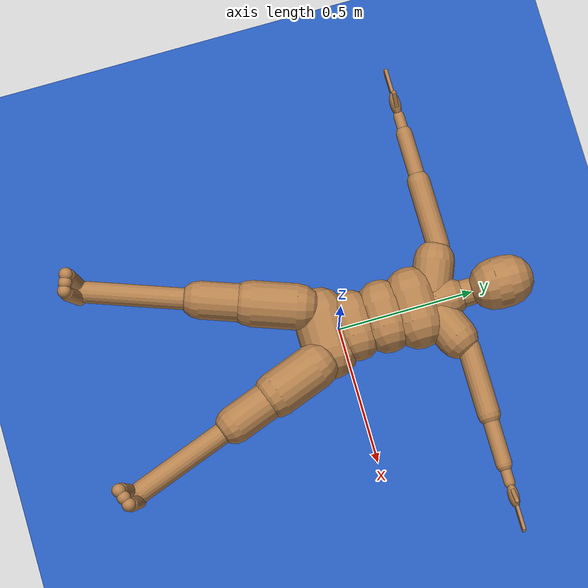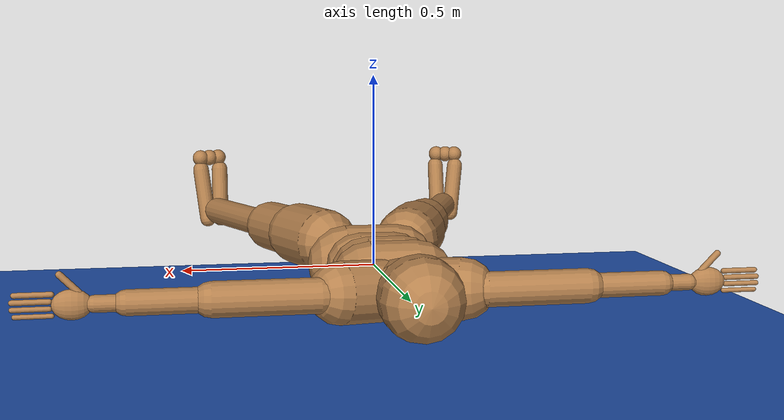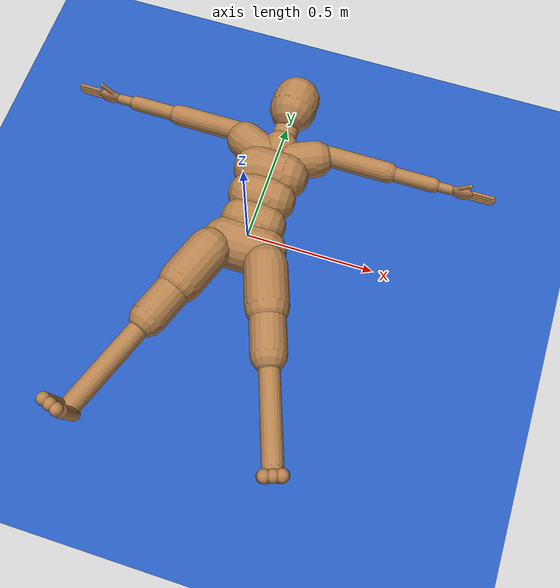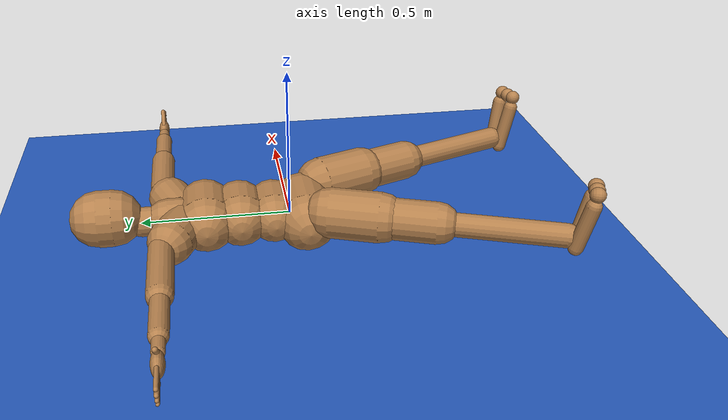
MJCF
<mujoco model="HumanoidCMU Tracking">
  <include file="../../common.xml"/>
  <include file="../humanoid_CMU_V2020.xml" />
  <size memory="1M"/>

  <custom>
    <numeric name="task_transition" data="1" />
    <numeric name="agent_planner" data="0" />
    <numeric name="agent_horizon" data="0.6" />
    <numeric name="agent_timestep" data="0.015" />
    <numeric name="sampling_spline_points" data="5" />
    <numeric name="sampling_exploration" data="0.15" />
    <numeric name="gradient_spline_points" data="5" />
  </custom>

  <default>
    <default class="mocap_site">
      <site type="sphere" size="0.027" rgba="0 0 1 1" group="2" material="target"/>
    </default>
  </default>

  <worldbody>
    <geom name="floor" pos="0 0 -0.2" size="0 0 0.05" type="plane" material="blue_grid"/>

    <body name="mocap[pelvis]" mocap="true">
      <site name="mocap[pelvis]" class="mocap_site" size="0.05" />
    </body>
    <body name="mocap[head]" mocap="true">
      <site name="mocap[head]" class="mocap_site" />
    </body>
    <body name="mocap[ltoe]" mocap="true">
      <site name="mocap[ltoe]" class="mocap_site" />
    </body>
    <body name="mocap[rtoe]" mocap="true">
      <site name="mocap[rtoe]" class="mocap_site" />
    </body>
    <body name="mocap[lheel]" mocap="true">
      <site name="mocap[lheel]" class="mocap_site" />
    </body>
    <body name="mocap[rheel]" mocap="true">
      <site name="mocap[rheel]" class="mocap_site" />
    </body>
    <body name="mocap[lknee]" mocap="true">
      <site name="mocap[lknee]" class="mocap_site" />
    </body>
    <body name="mocap[rknee]" mocap="true">
      <site name="mocap[rknee]" class="mocap_site" />
    </body>
    <body name="mocap[lhand]" mocap="true">
      <site name="mocap[lhand]" class="mocap_site" />
    </body>
    <body name="mocap[rhand]" mocap="true">
      <site name="mocap[rhand]" class="mocap_site" />
    </body>
    <body name="mocap[lelbow]" mocap="true">
      <site name="mocap[lelbow]" class="mocap_site" />
    </body>
    <body name="mocap[relbow]" mocap="true">
      <site name="mocap[relbow]" class="mocap_site" />
    </body>
    <body name="mocap[lshoulder]" mocap="true">
      <site name="mocap[lshoulder]" class="mocap_site" />
    </body>
    <body name="mocap[rshoulder]" mocap="true">
      <site name="mocap[rshoulder]" class="mocap_site" />
    </body>
    <body name="mocap[lhip]" mocap="true">
      <site name="mocap[lhip]" class="mocap_site" />
    </body>
    <body name="mocap[rhip]" mocap="true">
      <site name="mocap[rhip]" class="mocap_site" />
    </body>
  </worldbody>

  <sensor>
    <user name="control" dim="56" user="0 0.1 0 1.0" />
    <user name="joint vel." dim="62" user="0 0.01 0.0 1.0" />

    <user name="root pos error" dim="3" user="6 10.0 0.0 100.0 0.1" />
    <user name="head pos error" dim="3" user="6 10.0 0.0 100.0 0.1" />
    <user name="ltoe pos error" dim="3" user="6 1.0 0.0 100.0 0.1" />
    <user name="rtoe pos error" dim="3" user="6 1.0 0.0 100.0 0.1" />
    <user name="lheel pos error" dim="3" user="6 1.0 0.0 100.0 0.1" />
    <user name="rheel pos error" dim="3" user="6 1.0 0.0 100.0 0.1" />
    <user name="lknee pos error" dim="3" user="6 10.0 0.0 100.0 0.1" />
    <user name="rknee pos error" dim="3" user="6 10.0 0.0 100.0 0.1" />
    <user name="lhand pos error" dim="3" user="6 1.0 0.0 100.0 0.1" />
    <user name="rhand pos error" dim="3" user="6 1.0 0.0 100.0 0.1" />
    <user name="lelbow pos error" dim="3" user="6 1.0 0.0 100.0 0.1" />
    <user name="relbow pos error" dim="3" user="6 1.0 0.0 100.0 0.1" />
    <user name="lshoulder pos error" dim="3" user="6 10.0 0.0 100.0 0.1" />
    <user name="rshoulder pos error" dim="3" user="6 10.0 0.0 100.0 0.1" />
    <user name="lhip pos error" dim="3" user="6 1.0 0.0 100.0 0.1" />
    <user name="rhip pos error" dim="3" user="6 1.0 0.0 100.0 0.1" />

    <user name="root vel error" dim="3" user="6 0.01 0.0 100.0 0.1" />
    <user name="head vel error" dim="3" user="6 0.01 0.0 100.0 0.1" />
    <user name="ltoe vel error" dim="3" user="6 0.01 0.0 100.0 0.1" />
    <user name="rtoe vel error" dim="3" user="6 0.01 0.0 100.0 0.1" />
    <user name="lheel vel error" dim="3" user="6 0.01 0.0 100.0 0.1" />
    <user name="rheel vel error" dim="3" user="6 0.01 0.0 100.0 0.1" />
    <user name="lknee vel error" dim="3" user="6 0.01 0.0 100.0 0.1" />
    <user name="rknee vel error" dim="3" user="6 0.01 0.0 100.0 0.1" />
    <user name="lhand vel error" dim="3" user="6 0.01 0.0 100.0 0.1" />
    <user name="rhand vel error" dim="3" user="6 0.01 0.0 100.0 0.1" />
    <user name="lelbow vel error" dim="3" user="6 0.01 0.0 100.0 0.1" />
    <user name="relbow vel error" dim="3" user="6 0.01 0.0 100.0 0.1" />
    <user name="lshoulder vel error" dim="3" user="6 0.01 0.0 100.0 0.1" />
    <user name="rshoulder vel error" dim="3" user="6 0.01 0.0 100.0 0.1" />
    <user name="lhip vel error" dim="3" user="6 0.01 0.0 100.0 0.1" />
    <user name="rhip vel error" dim="3" user="6 0.01 0.0 100.0 0.1" />

    <framepos name="trace0" objtype="body" objname="thorax"/>

    <framepos name="tracking_pos[pelvis]" objtype="site" objname="root"/>
    <framepos name="tracking_pos[head]" objtype="site" objname="tracking[head]"/>
    <framepos name="tracking_pos[ltoe]" objtype="site" objname="tracking[ltoes0]"/>
    <framepos name="tracking_pos[rtoe]" objtype="site" objname="tracking[rtoes0]"/>
    <framepos name="tracking_pos[lheel]" objtype="site" objname="tracking[lfoot]"/>
    <framepos name="tracking_pos[rheel]" objtype="site" objname="tracking[rfoot]"/>
    <framepos name="tracking_pos[lknee]" objtype="site" objname="tracking[ltibia]"/>
    <framepos name="tracking_pos[rknee]" objtype="site" objname="tracking[rtibia]"/>
    <framepos name="tracking_pos[lhand]" objtype="site" objname="tracking[lwrist]"/>
    <framepos name="tracking_pos[rhand]" objtype="site" objname="tracking[rwrist]"/>
    <framepos name="tracking_pos[lelbow]" objtype="site" objname="tracking[lradius]"/>
    <framepos name="tracking_pos[relbow]" objtype="site" objname="tracking[rradius]"/>
    <framepos name="tracking_pos[lshoulder]" objtype="site" objname="tracking[lhumerus]"/>
    <framepos name="tracking_pos[rshoulder]" objtype="site" objname="tracking[rhumerus]"/>
    <framepos name="tracking_pos[lhip]" objtype="site" objname="tracking[lfemur]"/>
    <framepos name="tracking_pos[rhip]" objtype="site" objname="tracking[rfemur]"/>

    <framelinvel name="tracking_linvel[pelvis]" objtype="site" objname="root"/>
    <framelinvel name="tracking_linvel[head]" objtype="site" objname="tracking[head]"/>
    <framelinvel name="tracking_linvel[ltoe]" objtype="site" objname="tracking[ltoes0]"/>
    <framelinvel name="tracking_linvel[rtoe]" objtype="site" objname="tracking[rtoes0]"/>
    <framelinvel name="tracking_linvel[lheel]" objtype="site" objname="tracking[lfoot]"/>
    <framelinvel name="tracking_linvel[rheel]" objtype="site" objname="tracking[rfoot]"/>
    <framelinvel name="tracking_linvel[lknee]" objtype="site" objname="tracking[ltibia]"/>
    <framelinvel name="tracking_linvel[rknee]" objtype="site" objname="tracking[rtibia]"/>
    <framelinvel name="tracking_linvel[lhand]" objtype="site" objname="tracking[lwrist]"/>
    <framelinvel name="tracking_linvel[rhand]" objtype="site" objname="tracking[rwrist]"/>
    <framelinvel name="tracking_linvel[lelbow]" objtype="site" objname="tracking[lradius]"/>
    <framelinvel name="tracking_linvel[relbow]" objtype="site" objname="tracking[rradius]"/>
    <framelinvel name="tracking_linvel[lshoulder]" objtype="site" objname="tracking[lhumerus]"/>
    <framelinvel name="tracking_linvel[rshoulder]" objtype="site" objname="tracking[rhumerus]"/>
    <framelinvel name="tracking_linvel[lhip]" objtype="site" objname="tracking[lfemur]"/>
    <framelinvel name="tracking_linvel[rhip]" objtype="site" objname="tracking[rfemur]"/>
  </sensor>

  <include file="./keyframes/CMU-CMU-108-108_13_poses.xml"/>

</mujoco>

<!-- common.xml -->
<mujoco>

    <visual>
        <headlight ambient=".4 .4 .4" diffuse=".8 .8 .8" specular="0.1 0.1 0.1"/>
        <map znear=".01"/>
        <quality shadowsize="2048"/>
        <global elevation="-15"/>
    </visual>

    <asset>
        <texture name="blue_grid" type="2d" builtin="checker" rgb1=".02 .14 .44" rgb2=".27 .55 1" width="300" height="300" mark="edge" markrgb="1 1 1"/>
        <material name="blue_grid" texture="blue_grid" texrepeat="1 1" texuniform="true" reflectance=".2"/>

        <texture name="grey_grid" type="2d" builtin="checker" rgb1=".26 .26 .26" rgb2=".6 .6 .6" width="300" height="300" mark="edge" markrgb="1 1 1"/>
        <material name="grey_grid" texture="grey_grid" texrepeat="1 1" texuniform="true" reflectance=".2"/>
        <texture name="skybox" type="skybox" builtin="gradient" rgb1=".66 .79 1" rgb2=".9 .91 .93" width="800" height="800"/>

        <material name="self" rgba=".7 .5 .3 1"/>
        <material name="self_default" rgba=".7 .5 .3 1"/>
        <material name="self_highlight" rgba="0 .5 .3 1"/>
        <material name="effector" rgba=".7 .4 .2 1"/>
        <material name="effector_default" rgba=".7 .4 .2 1"/>
        <material name="effector_highlight" rgba="0 .5 .3 1"/>
        <material name="decoration" rgba=".2 .6 .3 1"/>
        <material name="eye" rgba="0 .2 1 1"/>
        <material name="target" rgba=".6 .3 .3 1"/>
        <material name="target_default" rgba=".6 .3 .3 1"/>
        <material name="target_highlight" rgba=".6 .3 .3 .4"/>
        <material name="site" rgba=".5 .5 .5 .3"/>
    </asset>

    <size memory="1M"/>

    <statistic extent="0.4" center="0.3 0.1 0"/>

    <visual>
        <quality shadowsize="8192"/>
        <global azimuth="180" elevation="-30"/>
    </visual>

    <default>
        <geom friction="1.0"/>
    </default>

    <compiler angle="radian" autolimits="true"/>

    <asset>
        <mesh name="apple" file="../../shared_assets/apple/apple.obj" />
        <mesh name="apple_contact0" file="../../shared_assets/apple/contact0.stl"  />
        <mesh name="apple_contact1" file="../../shared_assets/apple/contact1.stl"  />

        <mesh name="doorknob" file="../../shared_assets/doorknob/doorknob.obj" />

        <mesh name="flashlight" file="../../shared_assets/flashlight/flashlight.obj" />
        <mesh name="flashlight_contact0" file="../../shared_assets/flashlight/contact0.stl"  />
        <mesh name="flashlight_contact1" file="../../shared_assets/flashlight/contact1.stl"  />

        <mesh name="hammer" file="../../shared_assets/hammer/hammer.obj" />
        <mesh name="hammer_contact0" file="../../shared_assets/hammer/contact0.stl"  />
        <mesh name="hammer_contact1" file="../../shared_assets/hammer/contact1.stl"  />

        <mesh name="phone" file="../../shared_assets/phone/phone.obj" />
        <mesh name="phone_contact0" file="../../shared_assets/phone/contact0.stl"  />
        <mesh name="phone_contact1" file="../../shared_assets/phone/contact1.stl"  />
        <mesh name="phone_contact2" file="../../shared_assets/phone/contact2.stl"  />

        <mesh name="stapler" file="../../shared_assets/stapler/stapler.obj" />
        <mesh name="stapler_contact0" file="../../shared_assets/stapler/contact0.stl"  />
        <mesh name="stapler_contact1" file="../../shared_assets/stapler/contact1.stl"  />
        <mesh name="stapler_contact2" file="../../shared_assets/stapler/contact2.stl"  />
        <mesh name="stapler_contact3" file="../../shared_assets/stapler/contact3.stl"  />
        <mesh name="stapler_contact4" file="../../shared_assets/stapler/contact4.stl"  />

        <mesh name="waterbottle" file="../../shared_assets/waterbottle/waterbottle.obj" />
        <mesh name="waterbottle_contact0" file="../../shared_assets/waterbottle/contact0.stl"  />
        <mesh name="waterbottle_contact1" file="../../shared_assets/waterbottle/contact1.stl"  />
    </asset>

</mujoco>

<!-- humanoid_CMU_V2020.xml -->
<mujoco model="HumanoidCMU">
  <compiler angle="radian"/>
  <size njmax="500" nconmax="500"/>
  <default>
    <joint limited="true" solimplimit="0 0.99 0.01" stiffness="1" armature=".01" damping="1"/>
    <geom size="0.03 0 0" condim="1" friction="0.7 0.005 0.0001" solref="0.015 1" solimp="0.99 0.99 0.003"/>
    <general ctrllimited="true" ctrlrange="-1 1"/>
    <default class="humanoid">
      <geom type="capsule" material="self" group="2"/>
      <default class="stiff_medium">
        <joint stiffness="10" damping="2"/>
      </default>
      <default class="stiff_medium_higher">
        <joint stiffness="50" damping="4"/>
      </default>
      <default class="stiff_high">
        <joint stiffness="200" damping="5"/>
      </default>
      <default class="sensor_site">
        <site type="sphere" size="0.01" group="4" rgba="1 0 0 .5"/>
      </default>
      <default class="contact">
        <geom condim="3" friction="1. 0.005 0.0001" solref="0.015 1" solimp="0.98 0.98 0.001" priority="1"/>
      </default>
      <default class="tracking_site">
        <site type="sphere" size="0.027" rgba="1 0 0 1" group="3"/>
      </default>
    </default>
  </default>
  <worldbody>
    <body name="root" childclass="humanoid">
      <light name="tracking_light" pos="0 0 7" dir="0 0 -1" mode="trackcom"/>
      <camera name="back" pos="0 3 1.4" xyaxes="-1 0 0 0 -1 2" mode="trackcom"/>
      <camera name="side" pos="-3 0 1.4" xyaxes="0 -1 0 1 0 2" mode="trackcom"/>
      <camera name="front_side" pos="-2 -2 0.5" xyaxes="0.5 -0.5 0 0.1 0.1 1" mode="trackcom"/>
      <camera name="bodycam" pos="0 .3 .1" xyaxes="-1 0 0 0 1 0" fovy="80"/>
      <site name="root" size="0.05" class="tracking_site"/>
      <freejoint/>
      <geom name="root_geom" size="0.1 0.07" pos="0 -0.05 0" quat="1 0 -1 0"/>
      <body name="lhipjoint">
        <geom name="lhipjoint" size="0.008 0.02187363" pos="0.0509685 -0.0459037 0.024723" quat="0.5708 -0.566602 -0.594264 0"/>
        <body name="lfemur" pos="0.101937 -0.0918074 0.0494461" quat="0.984808 0 0 0.173648">
          <site class="tracking_site" name="tracking[lfemur]"/>
          <joint name="lfemurrz" pos="0 0 0" axis="0 0 1" range="-1.0472 1.22173" class="stiff_medium"/>
          <joint name="lfemurry" pos="0 0 0" axis="0 1 0" range="-1.22173 1.22173" class="stiff_medium"/>
          <joint name="lfemurrx" pos="0 0 0" axis="1 0 0" range="-2.79253 0.349066" class="stiff_medium"/>
          <geom name="lfemur_upper" size="0.085 0.083" pos="0 -0.115473 0" quat="0.696364 -0.696364 -0.122788 -0.122788" mass="0"/>
          <geom name="lfemur" size="0.07 0.182226" pos="0 -0.202473 0" quat="0.696364 -0.696364 -0.122788 -0.122788"/>
          <body name="ltibia" pos="0 -0.404945 0">
            <site class="tracking_site" name="tracking[ltibia]"/>
            <joint name="ltibiarx" pos="0 0 0" axis="1 0 0" range="0.01 2.96706"/>
            <geom name="ltibia" size="0.04 0.1825614" pos="0 -0.202846 0" quat="0.696364 -0.696364 -0.122788 -0.122788"/>
            <body name="lfoot" pos="0 -0.415693 0" quat="1 -1 0 0">
              <site class="tracking_site" name="tracking[lfoot]"/>
              <site name="lfoot_touch" type="capsule" pos="0.0 0.02 -0.015" size="0.025 0.01" zaxis="1 0 0" class="sensor_site"/>
              <joint name="lfootrz" pos="0 0 0" axis="0 0 1" range="-1.22173 0.349066" class="stiff_medium"/>
              <joint name="lfootrx" pos="0 0 0" axis="1 0 0" range="-0.785398 0.8" class="stiff_medium"/>
              <geom name="lfoot" size="0.025 0.08" pos="-0.0269999975006 -0.05 -0.0113878" quat=" 0.76725516 -0.64051114  0.02306487 -0.02306583" class="contact"/>
              <geom name="lfoot_ch" size="0.025 0.08" pos="0.0270000024994 -0.05 -0.0113878" quat=" 0.72887266 -0.59399462 -0.24074283 -0.2407425 " class="contact"/>
              <body name="ltoes" pos="0 -0.156372 -0.0227756">
                <site class="tracking_site" name="tracking[ltoes0]"/>
                <joint name="ltoesrx" pos="0 0 0" axis="1 0 0" range="-1.5708 0.349066"/>
                <geom name="ltoes0" type="sphere" size="0.025" pos="0 -0.01 -.01" class="contact"/>
                <geom name="ltoes1" type="sphere" size="0.025" pos=".03 -0.01 -.01" class="contact"/>
                <geom name="ltoes2" type="sphere" size="0.025" pos="-.03 -0.01 -.01" class="contact"/>
                <site name="ltoes_touch" type="capsule" pos="0.0 -0.01 -0.02" size="0.025 0.03" zaxis="1 0 0" class="sensor_site"/>
              </body>
            </body>
          </body>
        </body>
      </body>
      <body name="rhipjoint">
        <geom name="rhipjoint" size="0.008 0.02187363" pos="-0.0509685 -0.0459037 0.024723" quat="0.574856 -0.547594 0.608014 0"/>
        <body name="rfemur" pos="-0.101937 -0.0918074 0.0494461" quat="0.984808 0 0 -0.173648">
          <site class="tracking_site" name="tracking[rfemur]"/>
          <joint name="rfemurrz" pos="0 0 0" axis="0 0 1" range="-1.22173 1.0472" class="stiff_medium"/>
          <joint name="rfemurry" pos="0 0 0" axis="0 1 0" range="-1.22173 1.22173" class="stiff_medium"/>
          <joint name="rfemurrx" pos="0 0 0" axis="1 0 0" range="-2.79253 0.349066" class="stiff_medium"/>
          <geom name="rfemur_upper" size="0.085 0.083" pos="0 -0.115473 0" quat="0.696364 -0.696364 0.122788 0.122788" mass="0"/>
          <geom name="rfemur" size="0.07 0.182226" pos="0 -0.202473 0" quat="0.696364 -0.696364 0.122788 0.122788"/>
          <body name="rtibia" pos="0 -0.404945 0">
            <site class="tracking_site" name="tracking[rtibia]"/>
            <joint name="rtibiarx" pos="0 0 0" axis="1 0 0" range="0.01 2.96706"/>
            <geom name="rtibia" size="0.04 0.1825614" pos="0 -0.202846 0" quat="0.696364 -0.696364 0.122788 0.122788"/>
            <body name="rfoot" pos="0 -0.415693 0" quat="0.707107 -0.707107 0 0">
              <site class="tracking_site" name="tracking[rfoot]"/>
              <site name="rfoot_touch" type="capsule" pos="0.0 0.02 -0.015" size="0.025 0.01" zaxis="1 0 0" class="sensor_site"/>
              <joint name="rfootrz" pos="0 0 0" axis="0 0 1" range="-0.349066 1.22173" class="stiff_medium"/>
              <joint name="rfootrx" pos="0 0 0" axis="1 0 0" range="-0.785398 .8" class="stiff_medium"/>
              <geom name="rfoot" size="0.025 0.08" pos="-0.0269999965316 -0.05 -0.0113878" quat=" 0.73520687 -0.58633523  0.24050108  0.24050079" class="contact"/>
              <geom name="rfoot_ch" size="0.025 0.08" pos="0.0270000034684 -0.05 -0.0113878" quat=" 0.77312469 -0.633231   -0.02545846  0.02545836" class="contact"/>
              <body name="rtoes" pos="0 -0.156372 -0.0227756">
                <site class="tracking_site" name="tracking[rtoes0]"/>
                <joint name="rtoesrx" pos="0 0 0" axis="1 0 0" range="-1.5708 0.349066"/>
                <geom name="rtoes0" type="sphere" size="0.025" pos="0 -0.01 -.01" class="contact"/>
                <geom name="rtoes1" type="sphere" size="0.025" pos=".03 -0.01 -.01" class="contact"/>
                <geom name="rtoes2" type="sphere" size="0.025" pos="-.03 -0.01 -.01" class="contact"/>
                <site name="rtoes_touch" type="capsule" pos="0.0 -0.01 -0.02" size="0.025 0.03" zaxis="1 0 0" class="sensor_site"/>
              </body>
            </body>
          </body>
        </body>
      </body>
      <body name="lowerback">
        <joint name="lowerbackrz" pos="0 0 0" axis="0 0 1" range="-0.523599 0.523599" class="stiff_high"/>
        <joint name="lowerbackry" pos="0 0 0" axis="0 1 0" range="-0.523599 0.523599" class="stiff_high"/>
        <joint name="lowerbackrx" pos="0 0 0" axis="1 0 0" range="-0.349066 0.785398" class="stiff_medium"/>
        <geom name="lowerback" size="0.085 0.04540016" pos="0.00282931 0.0566065 0.01" quat="1 0 1 0"/>
        <body name="upperback" pos="0.000565862 0.113213 -0.00805298">
          <joint name="upperbackrz" pos="0 0 0" axis="0 0 1" range="-0.523599 0.523599" class="stiff_high"/>
          <joint name="upperbackry" pos="0 0 0" axis="0 1 0" range="-0.523599 0.523599" class="stiff_high"/>
          <joint name="upperbackrx" pos="0 0 0" axis="1 0 0" range="-0.349066 0.785398" class="stiff_medium"/>
          <geom name="upperback" size="0.09 0.04542616" pos="0.000256264 0.0567802 0.02" quat="1 0 1 0"/>
          <body name="thorax" pos="0.000512528 0.11356 0.000936821">
            <joint name="thoraxrz" pos="0 0 0" axis="0 0 1" range="-0.523599 0.523599" class="stiff_high"/>
            <joint name="thoraxry" pos="0 0 0" axis="0 1 0" range="-0.523599 0.523599" class="stiff_high"/>
            <joint name="thoraxrx" pos="0 0 0" axis="1 0 0" range="-0.349066 0.785398" class="stiff_medium"/>
            <geom name="thorax" size="0.095 0.0570206" pos="0 0.0569725 0.02" quat="1 0 1 0"/>
            <body name="lowerneck" pos="0 0.113945 0.00468037">
              <joint name="lowerneckrz" pos="0 0 0" axis="0 0 1" range="-0.523599 0.523599" class="stiff_medium_higher"/>
              <joint name="lowerneckry" pos="0 0 0" axis="0 1 0" range="-0.523599 0.523599" class="stiff_medium_higher"/>
              <joint name="lowerneckrx" pos="0 0 0" axis="1 0 0" range="-0.349066 0.785398" class="stiff_medium_higher"/>
              <geom name="lowerneck" size="0.075 0.02279225" pos="-0.00165071 0.0452401 0.00534359" quat="1 1 0 0"/>
              <body name="upperneck" pos="-0.00330143 0.0904801 0.0106872">
                <joint name="upperneckrz" pos="0 0 0" axis="0 0 1" range="-0.523599 0.523599" class="stiff_medium_higher"/>
                <joint name="upperneckry" pos="0 0 0" axis="0 1 0" range="-0.523599 0.523599" class="stiff_medium_higher"/>
                <joint name="upperneckrx" pos="0 0 0" axis="1 0 0" range="-0.349066 0.785398" class="stiff_medium_higher"/>
                <geom name="upperneck" size="0.05 0.0225272" pos="0.000500875 0.0449956 -0.00224644" quat="1 1 0 0"/>
                <body name="head" pos="0.00100175 0.13 -0.00449288">
                  <site class="tracking_site" name="tracking[head]"/>
                  <camera name="egocentric" pos="0 0 0" xyaxes="-1 0 0 0 1 0" fovy="80"/>
                  <joint name="headrz" pos="0 0 0" axis="0 0 1" range="-0.523599 0.523599" class="stiff_medium_higher"/>
                  <joint name="headry" pos="0 0 0" axis="0 1 0" range="-0.523599 0.523599" class="stiff_medium_higher"/>
                  <joint name="headrx" pos="0 0 0" axis="1 0 0" range="-0.349066 0.785398" class="stiff_medium_higher"/>
                  <geom name="head" size="0.095 0.024104" pos="0.000341465 0.048184 0.025" quat="1 1 0 0"/>
                </body>
              </body>
            </body>
            <body name="lclavicle" pos="0 0.113945 0.00468037">
              <joint name="lclaviclerz" pos="0 0 0" axis="0 0 1" range="0 0.349066" class="stiff_high"/>
              <joint name="lclaviclery" pos="0 0 0" axis="0 1 0" range="-0.349066 0.174533" class="stiff_high"/>
              <geom name="lclavicle" size="0.075 0.06" pos="0.0918817 0.0382636 0.00535704" quat="0.688 0.279 -0.67 0"/>
              <body name="lhumerus" pos="0.18 0.09 0.0107141" quat="0.183013 0.683013 -0.683013 0.183013">
                <site class="tracking_site" name="tracking[lhumerus]"/>
                <joint name="lhumerusrz" pos="0 0 0" axis="0 0 1" range="-1.1 1.5708" class="stiff_medium"/>
                <joint name="lhumerusry" pos="0 0 0" axis="0 1 0" range="-1.5708 1.5708" class="stiff_medium"/>
                <joint name="lhumerusrx" pos="0 0 0" axis="1 0 0" range="-1.0472 1.5708" class="stiff_medium"/>
                <site name="lhumerus_ft" class="sensor_site"/>
                <geom name="lhumerus" size="0.042 0.1245789" pos="0 -0.138421 0" quat="0.612372 -0.612372 0.353553 0.353553"/>
                <body name="lradius" pos="0 -0.276843 0">
                  <site class="tracking_site" name="tracking[lradius]"/>
                  <joint name="lradiusrx" pos="0 0 0" axis="1 0 0" range="-0.174533 2.96706"/>
                  <geom name="lradius" size="0.03 0.08169111" pos="0 -0.0907679 0" quat="0.612372 -0.612372 0.353553 0.353553"/>
                  <site name="lwrist" pos="0 -0.181536 0" quat="-0.5 0 0.866025 0"/>
                  <body name="lwrist" pos="0 -0.181536 0" quat="-0.5 0 0.866025 0">
                    <site class="tracking_site" name="tracking[lwrist]"/>
                    <joint name="lwristry" pos="0 0 0" axis="0 1 0" range="0 3.14159"/>
                    <geom name="lwrist" size="0.02 0.03" pos="0 -0.03 0" quat="1.59389e-11 -1.59388e-11 -0.707107 -0.707107"/>
                    <body name="lhand" pos="0 -0.0907676 0">
                      <joint name="lhandrz" pos="0 0 0" axis="0 0 1" range="-0.785398 0.785398"/>
                      <joint name="lhandrx" pos="0 0 0" axis="1 0 0" range="-1.5708 1.5708"/>
                      <site name="lhand_touch" size=".012 0.005 0.015" pos="0 -0.016752 -0.02" quat="0 0 -1 -1" type="ellipsoid" class="sensor_site"/>
                      <geom name="lhand" size="0.035 0.02 0.045" pos="0 -0.016752 0" quat="0 0 -1 -1" type="ellipsoid" class="contact"/>
                      <body name="lfingers" pos="0 -0.075 0">
                        <joint name="lfingersrx" pos="0 0.015 0" axis="1 0 0" range="0 1.5708"/>
                        <site name="lfingers_touch" type="box" size="0.023 0.013 0.003" pos="0 -0.042 -0.007" class="sensor_site"/>
                        <geom name="lfinger0" size="0.0065 0.04" pos="-.024 -0.025 0" quat="1 -1 0 0" class="contact"/>
                        <geom name="lfinger1" size="0.0065 0.04" pos="-.008 -0.03 0" quat="1 -1 0 0" class="contact"/>
                        <geom name="lfinger2" size="0.006 0.04" pos=".008 -0.03 0" quat="1 -1 0 0" class="contact"/>
                        <geom name="lfinger3" size="0.0055 0.04" pos=".024 -0.025 0" quat="1 -1 0 0" class="contact"/>
                      </body>
                      <body name="lthumb" pos="-.025 0 0" quat="0.92388 0 0 -0.382683">
                        <joint name="lthumbrz" pos="0 0 0" axis="0 0 1" range="-0.785398 0.785398"/>
                        <joint name="lthumbrx" pos="0 0 0" axis="1 0 0" range="0 1.57"/>
                        <site name="lthumb_touch" type="box" size="0.006 0.013 0.003" pos="0 -0.043 -0.007" class="sensor_site"/>
                        <geom name="lthumb" size="0.008 0.03" pos="0 -0.03 0" quat="0 0 -1 -1" class="contact"/>
                      </body>
                    </body>
                  </body>
                </body>
              </body>
            </body>
            <body name="rclavicle" pos="0 0.113945 0.00468037">
              <joint name="rclaviclerz" pos="0 0 0" axis="0 0 1" range="-0.349066 0" class="stiff_high"/>
              <joint name="rclaviclery" pos="0 0 0" axis="0 1 0" range="-0.174533 0.349066" class="stiff_high"/>
              <geom name="rclavicle" size="0.075 0.06" pos="-0.0918817 0.0382636 0.00535704" quat="0.688 0.279 0.67 0"/>
              <body name="rhumerus" pos="-0.18 0.09 0.0107141" quat="0.183013 0.683013 0.683013 -0.183013">
                <site class="tracking_site" name="tracking[rhumerus]"/>
                <joint name="rhumerusrz" pos="0 0 0" axis="0 0 1" range="-1.1 1.5708" class="stiff_medium"/>
                <joint name="rhumerusry" pos="0 0 0" axis="0 1 0" range="-1.5708 1.5708" class="stiff_medium"/>
                <joint name="rhumerusrx" pos="0 0 0" axis="1 0 0" range="-1.0472 1.5708" class="stiff_medium"/>
                <site name="rhumerus_ft" class="sensor_site"/>
                <geom name="rhumerus" size="0.042 0.1245789" pos="0 -0.138421 0" quat="0.612372 -0.612372 -0.353553 -0.353553"/>
                <body name="rradius" pos="0 -0.276843 0">
                  <site class="tracking_site" name="tracking[rradius]"/>
                  <joint name="rradiusrx" pos="0 0 0" axis="1 0 0" range="-0.174533 2.96706"/>
                  <geom name="rradius" size="0.03 0.08169111" pos="0 -0.0907679 0" quat="0.61238 -0.612372 -0.353554 -0.353541"/>
                  <body name="rwrist" pos="0 -0.181536 0" quat="-0.5 0 -0.866025 0">
                    <site class="tracking_site" name="tracking[rwrist]"/>
                    <joint name="rwristry" pos="0 0 0" axis="0 1 0" range="-3.14159 0"/>
                    <geom name="rwrist" size="0.02 0.03" pos="0 -0.03 0" quat="0 0 1 1"/>
                    <body name="rhand" pos="0 -0.0907676 0">
                      <joint name="rhandrz" pos="0 0 0" axis="0 0 1" range="-0.785398 0.785398"/>
                      <joint name="rhandrx" pos="0 0 0" axis="1 0 0" range="-1.5708 1.5708"/>
                      <site name="rhand_touch" size=".012 0.005 0.015" pos="0 -0.016752 -0.02" quat="0 0 1 1" type="ellipsoid" class="sensor_site"/>
                      <geom name="rhand" size="0.035 0.02 0.045" pos="0 -0.016752 0" quat="0 0 1 1" type="ellipsoid" class="contact"/>
                      <body name="rfingers" pos="0 -0.075 0">
                        <joint name="rfingersrx" pos="0 0.015 0" axis="1 0 0" range="0 1.5708"/>
                        <site name="rfingers_touch" type="box" size="0.023 0.013 0.003" pos="0 -0.042 -0.007" class="sensor_site"/>
                        <geom name="rfinger0" size="0.0065 0.04" pos=".024 -0.025 0" quat="1 -1 0 0" class="contact"/>
                        <geom name="rfinger1" size="0.0065 0.04" pos=".008 -0.03 0" quat="1 -1 0 0" class="contact"/>
                        <geom name="rfinger2" size="0.006 0.04" pos="-.008 -0.03 0" quat="1 -1 0 0" class="contact"/>
                        <geom name="rfinger3" size="0.0055 0.04" pos="-.024 -0.025 0" quat="1 -1 0 0" class="contact"/>
                      </body>
                      <body name="rthumb" pos=".025 0 0" quat="0.92388 0 0 0.382683">
                        <joint name="rthumbrz" pos="0 0 0" axis="0 0 1" range="-0.785398 0.785398"/>
                        <joint name="rthumbrx" pos="0 0 0" axis="1 0 0" range="0 1.57"/>
                        <site name="rthumb_touch" type="box" size="0.006 0.013 0.003" pos="0 -0.043 -0.007" class="sensor_site"/>
                        <geom name="rthumb" size="0.008 0.03" pos="0 -0.03 0" quat="6.21773e-11 -6.35284e-11 0.707107 0.707107" class="contact"/>
                      </body>
                    </body>
                  </body>
                </body>
              </body>
            </body>
          </body>
        </body>
      </body>
    </body>
  </worldbody>
  <contact>
    <exclude body1="lclavicle" body2="rclavicle"/>
    <exclude body1="lowerneck" body2="lclavicle"/>
    <exclude body1="lowerneck" body2="rclavicle"/>
    <exclude body1="upperneck" body2="lclavicle"/>
    <exclude body1="upperneck" body2="rclavicle"/>
  </contact>
  <actuator>
    <motor name="headrx" joint="headrx" gear="20"/>
    <motor name="headry" joint="headry" gear="20"/>
    <motor name="headrz" joint="headrz" gear="20"/>
    <motor name="lclaviclery" joint="lclaviclery" gear="20"/>
    <motor name="lclaviclerz" joint="lclaviclerz" gear="20"/>
    <motor name="lfemurrx" joint="lfemurrx" gear="120"/>
    <motor name="lfemurry" joint="lfemurry" gear="40"/>
    <motor name="lfemurrz" joint="lfemurrz" gear="40"/>
    <motor name="lfingersrx" joint="lfingersrx" gear="20"/>
    <motor name="lfootrx" joint="lfootrx" gear="20"/>
    <motor name="lfootrz" joint="lfootrz" gear="20"/>
    <motor name="lhandrx" joint="lhandrx" gear="20"/>
    <motor name="lhandrz" joint="lhandrz" gear="20"/>
    <motor name="lhumerusrx" joint="lhumerusrx" gear="40"/>
    <motor name="lhumerusry" joint="lhumerusry" gear="40"/>
    <motor name="lhumerusrz" joint="lhumerusrz" gear="40"/>
    <motor name="lowerbackrx" joint="lowerbackrx" gear="40"/>
    <motor name="lowerbackry" joint="lowerbackry" gear="40"/>
    <motor name="lowerbackrz" joint="lowerbackrz" gear="40"/>
    <motor name="lowerneckrx" joint="lowerneckrx" gear="20"/>
    <motor name="lowerneckry" joint="lowerneckry" gear="20"/>
    <motor name="lowerneckrz" joint="lowerneckrz" gear="20"/>
    <motor name="lradiusrx" joint="lradiusrx" gear="40"/>
    <motor name="lthumbrx" joint="lthumbrx" gear="20"/>
    <motor name="lthumbrz" joint="lthumbrz" gear="20"/>
    <motor name="ltibiarx" joint="ltibiarx" gear="80"/>
    <motor name="ltoesrx" joint="ltoesrx" gear="20"/>
    <motor name="lwristry" joint="lwristry" gear="20"/>
    <motor name="rclaviclery" joint="rclaviclery" gear="20"/>
    <motor name="rclaviclerz" joint="rclaviclerz" gear="20"/>
    <motor name="rfemurrx" joint="rfemurrx" gear="120"/>
    <motor name="rfemurry" joint="rfemurry" gear="40"/>
    <motor name="rfemurrz" joint="rfemurrz" gear="40"/>
    <motor name="rfingersrx" joint="rfingersrx" gear="20"/>
    <motor name="rfootrx" joint="rfootrx" gear="20"/>
    <motor name="rfootrz" joint="rfootrz" gear="20"/>
    <motor name="rhandrx" joint="rhandrx" gear="20"/>
    <motor name="rhandrz" joint="rhandrz" gear="20"/>
    <motor name="rhumerusrx" joint="rhumerusrx" gear="40"/>
    <motor name="rhumerusry" joint="rhumerusry" gear="40"/>
    <motor name="rhumerusrz" joint="rhumerusrz" gear="40"/>
    <motor name="rradiusrx" joint="rradiusrx" gear="40"/>
    <motor name="rthumbrx" joint="rthumbrx" gear="20"/>
    <motor name="rthumbrz" joint="rthumbrz" gear="20"/>
    <motor name="rtibiarx" joint="rtibiarx" gear="80"/>
    <motor name="rtoesrx" joint="rtoesrx" gear="20"/>
    <motor name="rwristry" joint="rwristry" gear="20"/>
    <motor name="thoraxrx" joint="thoraxrx" gear="40"/>
    <motor name="thoraxry" joint="thoraxry" gear="40"/>
    <motor name="thoraxrz" joint="thoraxrz" gear="40"/>
    <motor name="upperbackrx" joint="upperbackrx" gear="40"/>
    <motor name="upperbackry" joint="upperbackry" gear="40"/>
    <motor name="upperbackrz" joint="upperbackrz" gear="40"/>
    <motor name="upperneckrx" joint="upperneckrx" gear="20"/>
    <motor name="upperneckry" joint="upperneckry" gear="20"/>
    <motor name="upperneckrz" joint="upperneckrz" gear="20"/>
  </actuator>
</mujoco>

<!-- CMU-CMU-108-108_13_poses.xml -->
<mujoco>
  <keyframe>
    <key name="home" mpos="0.0 0.0 0.93457 -0.06914 -0.04399 1.4942 -0.30629 -0.06913 0.04377 0.51269 0.11572 0.18015 -0.18185 -0.06428 0.09405 0.47974 0.05799 0.29744 -0.1398 -0.08339 0.49196 0.12597 0.11766 0.4765 0.02383 -0.17134 1.05396 -0.15993 0.07802 1.11012 0.22981 -0.24852 1.17149 0.05924 0.20754 1.1315 0.05021 -0.19791 1.35451 0.00305 0.14988 1.37345 -0.00691 -0.071 0.84432 0.02651 0.06208 0.84382" qpos="0.0 0.0 0.77086 -0.45615 -0.49393 0.55856 0.48576 -0.42751 0.05081 -0.37943 0.226 0.08505 -0.11758 0.0 0.17395 -0.18889 0.31505 0.76389 -0.31807 0.13212 0.0 -0.08042 0.03618 -0.2546 -0.02543 0.04857 -0.08017 0.01708 0.04679 0.01259 -0.00812 0.00542 0.27163 0.00365 -0.002 0.08777 0.00357 0.00062 -0.18143 0.1894 -0.23499 1.5708 0.04005 -1.0472 1.46274 0.0 0.0 0.0 0.7854 0.0 0.785 -0.05543 0.29134 -1.1 0.15163 -0.77737 1.59473 0.0 0.0 0.0 0.7854 0.0 0.785" qvel="-2.64317 -0.1502 -0.67959 -0.42672 0.68351 -0.0265 -0.76702 -0.02135 1.77788 1.64152 0.21887 -0.83993 0.0 -0.27773 -0.07721 -0.73166 4.57759 -0.76225 -1.21992 0.0 -1.36065 -0.64758 -1.77215 -0.09606 -0.14755 0.55709 1.38271 -0.29326 2.77848 0.86445 -0.80366 -0.26029 0.64322 -0.49088 -0.38203 0.07997 -0.44995 -0.6208 -0.877 -0.70506 0.0 0.43139 0.0 2.28798 0.0 0.0 0.0 0.0 0.0 0.0 1.66291 0.62229 0.0 -3.2837 -3.00332 2.38561 0.0 0.0 0.0 0.0 0.0 0.0" />
    <key mpos="-0.08811 -0.00501 0.91192 -0.15506 -0.04463 1.47221 -0.33419 -0.06464 0.01381 0.42482 0.11743 0.2043 -0.2108 -0.05427 0.0658 0.38298 0.0578 0.31774 -0.2173 -0.08025 0.46549 0.00997 0.12368 0.44927 -0.08322 -0.17002 1.02568 -0.22764 0.0938 1.06329 0.12387 -0.25613 1.13476 0.00064 0.19821 1.11078 -0.04369 -0.20329 1.32828 -0.07177 0.14598 1.34963 -0.09479 -0.07618 0.82178 -0.06436 0.05761 0.82077" />
    <key mpos="-0.17327 -0.00959 0.88376 -0.24203 -0.04519 1.44645 -0.34026 -0.06335 0.00607 0.31715 0.11992 0.21665 -0.21268 -0.04863 0.04537 0.27114 0.05936 0.32798 -0.29802 -0.07111 0.43611 -0.11375 0.12798 0.41696 -0.1943 -0.1673 0.9882 -0.28601 0.11485 1.00688 0.01248 -0.26432 1.08834 -0.05369 0.18642 1.08546 -0.13827 -0.2085 1.29444 -0.14661 0.14106 1.31855 -0.17967 -0.08089 0.7937 -0.15278 0.05366 0.79227" />
    <key mpos="-0.25272 -0.01147 0.85801 -0.3333 -0.04409 1.4196 -0.344 -0.06363 0.00226 0.17908 0.12621 0.20961 -0.21527 -0.04638 0.03643 0.1393 0.06522 0.32308 -0.36635 -0.0639 0.40702 -0.25064 0.13064 0.38974 -0.31097 -0.15863 0.95182 -0.33081 0.13869 0.95029 -0.10638 -0.26975 1.04122 -0.10523 0.17118 1.06573 -0.23632 -0.21161 1.26042 -0.22164 0.13726 1.29005 -0.2604 -0.08285 0.76811 -0.23652 0.05226 0.76598" />
    <key mpos="-0.32861 -0.01206 0.84512 -0.42248 -0.0427 1.40392 -0.34583 -0.06282 0.0 0.01395 0.13237 0.18617 -0.21741 -0.04478 0.03493 -0.00859 0.06986 0.30347 -0.4101 -0.06053 0.38578 -0.39627 0.13068 0.38581 -0.42845 -0.14539 0.93961 -0.35925 0.15858 0.91575 -0.22605 -0.27185 1.01203 -0.15285 0.15322 1.06621 -0.33388 -0.21401 1.24299 -0.29526 0.13301 1.27676 -0.33679 -0.0827 0.7547 -0.31468 0.05272 0.75346" />
    <key mpos="-0.40445 -0.0134 0.84782 -0.5066 -0.04139 1.40419 -0.34578 -0.06167 0.00187 -0.17078 0.13796 0.15147 -0.22005 -0.04611 0.04643 -0.16607 0.07069 0.26822 -0.44015 -0.06054 0.38081 -0.53663 0.12888 0.40989 -0.53849 -0.13087 0.9568 -0.38535 0.16711 0.91479 -0.33937 -0.27241 1.00698 -0.19931 0.13317 1.08656 -0.42895 -0.2168 1.24614 -0.36336 0.12609 1.28164 -0.41003 -0.08216 0.75577 -0.39095 0.05371 0.75779" />
    <key mpos="-0.48195 -0.0147 0.86452 -0.58975 -0.03804 1.41868 -0.34486 -0.05884 0.01078 -0.37031 0.14312 0.11507 -0.22702 -0.04674 0.07406 -0.33469 0.07083 0.22315 -0.4677 -0.06286 0.39387 -0.66015 0.12676 0.45057 -0.63808 -0.1188 0.98891 -0.41696 0.1683 0.9367 -0.44821 -0.27702 1.02229 -0.24956 0.10948 1.12051 -0.52541 -0.21762 1.26483 -0.4295 0.11737 1.30101 -0.4821 -0.08024 0.76998 -0.46987 0.05623 0.77725" />
    <key mpos="-0.56169 -0.01638 0.88936 -0.67275 -0.03544 1.44144 -0.34665 -0.05469 0.02426 -0.58085 0.1479 0.0863 -0.24577 -0.04402 0.11228 -0.51852 0.07301 0.17948 -0.50132 -0.0669 0.41991 -0.76413 0.12516 0.4921 -0.72851 -0.11123 1.02541 -0.46089 0.16207 0.96984 -0.55258 -0.28627 1.05007 -0.30982 0.08171 1.15955 -0.62063 -0.21778 1.29295 -0.4992 0.10831 1.32821 -0.55534 -0.07833 0.79263 -0.55087 0.05825 0.80506" />
    <key mpos="-0.64344 -0.01901 0.91449 -0.75586 -0.0348 1.46514 -0.35217 -0.05086 0.03859 -0.7951 0.15236 0.07053 -0.27916 -0.04022 0.15081 -0.71269 0.07923 0.14822 -0.54361 -0.07178 0.45003 -0.85001 0.1235 0.52233 -0.81341 -0.10855 1.05841 -0.51763 0.15287 1.0027 -0.65227 -0.29759 1.08071 -0.38124 0.05396 1.19475 -0.71284 -0.21851 1.32236 -0.57386 0.10007 1.35535 -0.6315 -0.07787 0.81638 -0.63249 0.05836 0.83273" />
    <key mpos="-0.72717 -0.02266 0.93224 -0.8393 -0.03553 1.48186 -0.36179 -0.04718 0.05799 -1.00004 0.15312 0.07 -0.32165 -0.03793 0.18582 -0.89988 0.09142 0.13585 -0.59658 -0.07653 0.4746 -0.92347 0.11904 0.53517 -0.89455 -0.10947 1.08246 -0.58718 0.14526 1.02831 -0.74533 -0.30794 1.10571 -0.46052 0.03271 1.21952 -0.80179 -0.22006 1.3453 -0.65297 0.09359 1.37533 -0.71058 -0.07968 0.83371 -0.7149 0.05622 0.85212" />
    <key mpos="-0.81303 -0.0266 0.93779 -0.923 -0.03761 1.48702 -0.38265 -0.04797 0.08347 -1.16892 0.14926 0.08133 -0.37153 -0.03727 0.21688 -1.05426 0.10419 0.13607 -0.66624 -0.07932 0.48492 -0.99519 0.11565 0.5325 -0.97287 -0.11305 1.09286 -0.66938 0.14422 1.04055 -0.82955 -0.31561 1.11791 -0.54438 0.0239 1.22808 -0.88656 -0.22197 1.35517 -0.73578 0.09014 1.383 -0.79362 -0.08315 0.8395 -0.80042 0.05263 0.85807" />
    <key mpos="-0.89937 -0.02914 0.93136 -1.00487 -0.04078 1.48194 -0.42435 -0.05693 0.11368 -1.27787 0.14939 0.07916 -0.42895 -0.03928 0.24674 -1.15793 0.11408 0.12959 -0.75353 -0.08034 0.47789 -1.07556 0.1158 0.522 -1.04766 -0.11863 1.08692 -0.76127 0.15142 1.03559 -0.90031 -0.31783 1.11533 -0.62941 0.03082 1.21817 -0.96411 -0.22439 1.35094 -0.8202 0.09043 1.37649 -0.87926 -0.08539 0.83305 -0.88847 0.05026 0.85156" />
    <key mpos="-0.985 -0.03186 0.9145 -1.08462 -0.0453 1.46652 -0.48367 -0.06798 0.14409 -1.33126 0.15408 0.0462 -0.49881 -0.04209 0.275 -1.21363 0.12709 0.1063 -0.85363 -0.08354 0.45624 -1.16171 0.11372 0.50367 -1.11914 -0.12766 1.06368 -0.86265 0.16431 1.01419 -0.95799 -0.3145 1.10001 -0.71689 0.05215 1.19151 -1.03469 -0.22819 1.33449 -0.90694 0.09368 1.35637 -0.96566 -0.08799 0.81596 -0.97685 0.04753 0.83435" />
    <key mpos="-1.07005 -0.03459 0.88747 -1.16323 -0.05278 1.44095 -0.55907 -0.07775 0.16916 -1.35035 0.16564 0.01652 -0.58599 -0.04428 0.29641 -1.23098 0.14466 0.07557 -0.96362 -0.089 0.42233 -1.24758 0.10784 0.4745 -1.18787 -0.14212 1.02468 -0.97483 0.17818 0.97844 -1.00764 -0.30741 1.07363 -0.81111 0.08419 1.15058 -1.10092 -0.23303 1.30619 -0.9975 0.09826 1.32402 -1.05343 -0.09042 0.78826 -1.06524 0.04497 0.80722" />
    <key mpos="-1.15075 -0.0358 0.85376 -1.24182 -0.06293 1.40908 -0.65731 -0.08501 0.18813 -1.35575 0.17137 0.01252 -0.69172 -0.04826 0.31264 -1.23077 0.1507 0.05865 -1.08417 -0.09074 0.38081 -1.33556 0.09823 0.4421 -1.25077 -0.16188 0.97224 -1.09861 0.18882 0.93239 -1.05196 -0.29639 1.03992 -0.91661 0.12222 1.09885 -1.1645 -0.23779 1.26843 -1.09282 0.10323 1.28218 -1.13887 -0.09114 0.7536 -1.14867 0.04421 0.77385" />
    <key mpos="-1.22456 -0.03883 0.82464 -1.32182 -0.07458 1.37913 -0.78297 -0.09202 0.19311 -1.35953 0.17511 0.01081 -0.81868 -0.0556 0.31735 -1.23285 0.15027 0.04967 -1.2163 -0.09434 0.34673 -1.40335 0.09159 0.4078 -1.30398 -0.18488 0.91576 -1.23737 0.18698 0.88927 -1.09542 -0.28259 1.01146 -1.03832 0.1596 1.04707 -1.22664 -0.24283 1.23398 -1.19145 0.10545 1.24364 -1.2186 -0.09334 0.72351 -1.22607 0.04191 0.74545" />
    <key mpos="-1.29445 -0.04737 0.81042 -1.39815 -0.09311 1.36198 -0.93138 -0.10066 0.18081 -1.36236 0.17836 0.01089 -0.95806 -0.06222 0.3067 -1.23617 0.15227 0.05052 -1.35428 -0.11179 0.33858 -1.4522 0.0827 0.38106 -1.34551 -0.21099 0.88313 -1.38283 0.16191 0.8705 -1.13628 -0.27586 1.00235 -1.17153 0.1786 1.01312 -1.2845 -0.25171 1.21627 -1.2908 0.10004 1.22437 -1.28998 -0.10283 0.70973 -1.29959 0.03246 0.73047" />
    <key mpos="-1.36323 -0.06226 0.8138 -1.46931 -0.11934 1.36285 -1.09418 -0.11289 0.15274 -1.36376 0.17754 0.014 -1.1005 -0.0689 0.27948 -1.24042 0.15102 0.06154 -1.48536 -0.14438 0.36102 -1.48536 0.07268 0.36918 -1.38305 -0.23909 0.88714 -1.52022 0.11195 0.88671 -1.17336 -0.27982 1.01587 -1.30302 0.17469 1.00569 -1.33669 -0.2643 1.21933 -1.38963 0.08496 1.2281 -1.35743 -0.12023 0.7146 -1.37079 0.01525 0.73177" />
    <key mpos="-1.43445 -0.08245 0.83295 -1.53722 -0.15052 1.38115 -1.27022 -0.13147 0.11699 -1.36377 0.17434 0.0191 -1.24821 -0.08128 0.2396 -1.24725 0.14818 0.08167 -1.59834 -0.18696 0.40303 -1.5061 0.06307 0.37583 -1.42287 -0.26622 0.91445 -1.63796 0.04795 0.92577 -1.21238 -0.28669 1.04666 -1.42697 0.15583 1.02124 -1.38619 -0.27859 1.24169 -1.48717 0.06071 1.25004 -1.42684 -0.14343 0.73569 -1.44245 -0.0077 0.74845" />
    <key mpos="-1.50968 -0.1085 0.86418 -1.60439 -0.1853 1.41233 -1.45709 -0.16177 0.08631 -1.36698 0.16891 0.0281 -1.40672 -0.10379 0.19648 -1.26657 0.14187 0.1139 -1.68919 -0.23277 0.44954 -1.52896 0.05231 0.40357 -1.4683 -0.29205 0.95432 -1.73753 -0.01886 0.97461 -1.25793 -0.29243 1.08829 -1.5425 0.12661 1.05252 -1.43865 -0.29571 1.27709 -1.58095 0.02844 1.2847 -1.49848 -0.17168 0.7687 -1.51667 -0.03598 0.77768" />
    <key mpos="-1.58736 -0.13903 0.89919 -1.67169 -0.22216 1.44749 -1.64543 -0.20412 0.06892 -1.37407 0.1631 0.04093 -1.57332 -0.13897 0.16161 -1.30367 0.13132 0.15143 -1.76056 -0.27586 0.48821 -1.56257 0.04032 0.44376 -1.52126 -0.31709 0.99731 -1.82254 -0.08272 1.02369 -1.31191 -0.29826 1.13153 -1.64757 0.0906 1.09161 -1.4967 -0.31712 1.31541 -1.66902 -0.00846 1.32559 -1.57016 -0.20287 0.80505 -1.59345 -0.06781 0.81154" />
    <key mpos="-1.66577 -0.17027 0.92877 -1.74082 -0.25964 1.47597 -1.8239 -0.25266 0.06323 -1.38506 0.15692 0.06361 -1.73616 -0.18652 0.14047 -1.3506 0.11896 0.1883 -1.81932 -0.31055 0.51219 -1.60595 0.02413 0.48254 -1.58264 -0.34176 1.03452 -1.89859 -0.13917 1.06437 -1.3739 -0.30733 1.16659 -1.74347 0.05354 1.12816 -1.56023 -0.34167 1.34664 -1.75484 -0.04707 1.36219 -1.64197 -0.23332 0.83553 -1.67144 -0.09941 0.8408" />
    <key mpos="-1.74408 -0.20047 0.94714 -1.81166 -0.2956 1.49236 -1.97762 -0.30501 0.06752 -1.40364 0.14991 0.10061 -1.87897 -0.23964 0.13103 -1.39904 0.10315 0.22698 -1.87443 -0.3351 0.52004 -1.66642 0.00117 0.50784 -1.65327 -0.36629 1.05933 -1.97012 -0.18592 1.08932 -1.44274 -0.32206 1.1855 -1.83288 0.01998 1.15288 -1.62742 -0.36797 1.36466 -1.83923 -0.08537 1.38501 -1.71585 -0.26153 0.85382 -1.75076 -0.12896 0.85977" />
    <key mpos="-1.82136 -0.23077 0.95284 -1.88257 -0.3303 1.49805 -2.09055 -0.3587 0.07522 -1.44779 0.13911 0.14466 -1.98872 -0.28631 0.1245 -1.44941 0.08581 0.26848 -1.93155 -0.35241 0.51543 -1.74456 -0.02855 0.51462 -1.73129 -0.39287 1.06786 -2.04182 -0.22287 1.09408 -1.51712 -0.34334 1.18568 -1.91489 -0.01196 1.16246 -1.69591 -0.39534 1.36912 -1.91911 -0.12186 1.39251 -1.79017 -0.28953 0.85898 -1.83023 -0.1585 0.86629" />
    <key mpos="-1.89875 -0.26236 0.94713 -1.95389 -0.36529 1.49304 -2.16282 -0.39372 0.06304 -1.50996 0.12141 0.18231 -2.06345 -0.31711 0.11092 -1.51392 0.06418 0.30432 -1.99229 -0.36918 0.50168 -1.83649 -0.06324 0.50553 -1.8154 -0.42227 1.06153 -2.11459 -0.25108 1.07956 -1.59677 -0.37065 1.16987 -1.98863 -0.04362 1.15931 -1.76637 -0.42511 1.36115 -1.99508 -0.15684 1.3877 -1.86539 -0.31936 0.85294 -1.91052 -0.19003 0.86098" />
    <key mpos="-1.97739 -0.29501 0.93049 -2.02552 -0.39999 1.47619 -2.20491 -0.40094 0.03091 -1.58091 0.10039 0.21092 -2.10369 -0.33108 0.08487 -1.59348 0.03452 0.32788 -2.05193 -0.38956 0.47777 -1.93788 -0.09838 0.48441 -1.90387 -0.45323 1.04165 -2.18529 -0.27072 1.04916 -1.68075 -0.40145 1.14032 -2.05409 -0.07372 1.1453 -1.83815 -0.45662 1.34156 -2.06912 -0.1907 1.37137 -1.94286 -0.35149 0.83641 -1.99177 -0.22351 0.84404" />
    <key mpos="-2.0547 -0.32869 0.90377 -2.09696 -0.43299 1.45114 -2.21685 -0.40175 0.01181 -1.66586 0.07535 0.23171 -2.11323 -0.3283 0.05548 -1.68486 -0.00106 0.34115 -2.11842 -0.40965 0.44768 -2.04541 -0.13623 0.45299 -1.99439 -0.48477 1.01051 -2.25143 -0.28231 1.00753 -1.7669 -0.43441 1.09945 -2.11199 -0.10165 1.12236 -1.91054 -0.48903 1.31087 -2.14047 -0.22267 1.34499 -2.01862 -0.38501 0.81017 -2.07184 -0.2587 0.81659" />
    <key mpos="-2.12567 -0.36014 0.87398 -2.17076 -0.46625 1.42377 -2.21974 -0.39931 0.00791 -1.77759 0.04296 0.24007 -2.11831 -0.31742 0.04024 -1.79381 -0.04062 0.34461 -2.18969 -0.42998 0.41799 -2.1615 -0.18284 0.41777 -2.08865 -0.51687 0.97216 -2.31087 -0.28573 0.95956 -1.85734 -0.46906 1.05222 -2.16327 -0.12862 1.09667 -1.98524 -0.52287 1.27372 -2.20967 -0.25292 1.31443 -2.08818 -0.41586 0.78057 -2.1471 -0.29207 0.78624" />
    <key mpos="-2.19252 -0.38771 0.85326 -2.24703 -0.50012 1.40137 -2.22103 -0.39967 0.00523 -1.91577 -0.00155 0.23382 -2.12101 -0.31607 0.03753 -1.92062 -0.08634 0.33853 -2.24429 -0.45185 0.39366 -2.2861 -0.24117 0.39533 -2.18755 -0.54881 0.94166 -2.35785 -0.27965 0.91909 -1.95284 -0.50545 1.014 -2.20714 -0.15449 1.08307 -2.06268 -0.55931 1.24497 -2.2769 -0.28227 1.29242 -2.15451 -0.44244 0.75948 -2.21961 -0.3218 0.76544" />
    <key mpos="-2.25801 -0.4147 0.84701 -2.32295 -0.53261 1.39237 -2.22117 -0.40011 0.00657 -2.07159 -0.06128 0.21378 -2.1214 -0.31963 0.04664 -2.05694 -0.14074 0.3217 -2.28276 -0.46925 0.38137 -2.41196 -0.31087 0.39783 -2.28503 -0.58182 0.9379 -2.39252 -0.27186 0.90444 -2.04595 -0.54403 0.998 -2.24272 -0.17867 1.08922 -2.14165 -0.59881 1.23497 -2.33828 -0.30988 1.28587 -2.21938 -0.46821 0.75279 -2.28724 -0.34914 0.7596" />
    <key mpos="-2.32626 -0.44553 0.85505 -2.3988 -0.56254 1.39869 -2.22084 -0.39849 0.01176 -2.23967 -0.13715 0.18428 -2.12239 -0.32299 0.06318 -2.19658 -0.20459 0.29278 -2.30702 -0.47642 0.38387 -2.53032 -0.38256 0.42588 -2.37851 -0.61635 0.95925 -2.42309 -0.27182 0.91703 -2.13422 -0.59043 1.00225 -2.27331 -0.20488 1.11287 -2.22325 -0.64014 1.24291 -2.39293 -0.33623 1.2958 -2.28675 -0.49614 0.75959 -2.35698 -0.37865 0.76916" />
    <key mpos="-2.39648 -0.4793 0.87511 -2.4752 -0.59128 1.41701 -2.22254 -0.39625 0.02251 -2.41106 -0.22925 0.152 -2.13073 -0.32915 0.09397 -2.34104 -0.28004 0.25541 -2.32993 -0.4857 0.40426 -2.63589 -0.44787 0.46912 -2.46534 -0.65167 0.99262 -2.4543 -0.28066 0.94636 -2.21776 -0.64614 1.02217 -2.304 -0.23856 1.14862 -2.3076 -0.68203 1.26497 -2.44698 -0.36447 1.31811 -2.35471 -0.52504 0.77817 -2.42939 -0.4107 0.79142" />
    <key mpos="-2.46797 -0.51519 0.90211 -2.5523 -0.62084 1.44232 -2.22908 -0.39575 0.03611 -2.58324 -0.33636 0.12191 -2.15502 -0.34161 0.1342 -2.49262 -0.36797 0.21659 -2.35981 -0.50656 0.43639 -2.72679 -0.50359 0.51247 -2.54588 -0.68813 1.02788 -2.48988 -0.2991 0.98262 -2.29842 -0.70614 1.05318 -2.34003 -0.28164 1.1888 -2.3934 -0.72381 1.29604 -2.50408 -0.39598 1.34703 -2.42266 -0.55607 0.80459 -2.50301 -0.44589 0.81988" />
    <key mpos="-2.54143 -0.55346 0.9283 -2.62998 -0.65124 1.4666 -2.23866 -0.39638 0.05138 -2.75313 -0.45195 0.09907 -2.19394 -0.36134 0.17307 -2.64842 -0.46485 0.18301 -2.3994 -0.53499 0.46988 -2.80298 -0.55066 0.54291 -2.62128 -0.72556 1.05965 -2.53338 -0.32511 1.01913 -2.37683 -0.76602 1.08807 -2.38457 -0.33034 1.22672 -2.47929 -0.76513 1.32853 -2.56622 -0.43033 1.37513 -2.49274 -0.59013 0.83073 -2.57748 -0.48346 0.84711" />
    <key mpos="-2.6169 -0.59402 0.9458 -2.7077 -0.68223 1.48247 -2.25171 -0.39948 0.0744 -2.91094 -0.56816 0.08913 -2.23976 -0.3847 0.20735 -2.79694 -0.56146 0.16079 -2.45117 -0.56714 0.49456 -2.86771 -0.59205 0.55427 -2.69343 -0.76377 1.08321 -2.58697 -0.35732 1.04857 -2.45361 -0.8232 1.11716 -2.4386 -0.3798 1.25533 -2.56336 -0.80494 1.35367 -2.63347 -0.46618 1.39527 -2.56545 -0.62748 0.8485 -2.65259 -0.52285 0.86546" />
    <key mpos="-2.694 -0.6356 0.95127 -2.78471 -0.7141 1.48724 -2.275 -0.41474 0.1025 -3.0396 -0.67145 0.08678 -2.29033 -0.4109 0.23587 -2.92151 -0.6462 0.14671 -2.51626 -0.60352 0.5048 -2.92655 -0.62816 0.54724 -2.76276 -0.80131 1.09486 -2.6514 -0.39266 1.06328 -2.52705 -0.87293 1.1337 -2.50259 -0.42402 1.26856 -2.64322 -0.84177 1.36575 -2.70475 -0.50189 1.40305 -2.64135 -0.66814 0.85429 -2.7292 -0.56406 0.87104" />
    <key mpos="-2.77242 -0.67618 0.94474 -2.85882 -0.74606 1.48212 -2.31823 -0.44859 0.12985 -3.12561 -0.74284 0.0756 -2.34243 -0.44258 0.26181 -3.00744 -0.70875 0.13083 -2.59351 -0.6451 0.49933 -2.98711 -0.66495 0.52887 -2.82865 -0.83647 1.09272 -2.7257 -0.42839 1.05998 -2.59424 -0.9102 1.13536 -2.5747 -0.45934 1.26372 -2.71612 -0.87459 1.36382 -2.77787 -0.5357 1.39755 -2.7204 -0.71047 0.84803 -2.80741 -0.60552 0.86366" />
    <key mpos="-2.8514 -0.71673 0.92719 -2.92969 -0.77829 1.46721 -2.37229 -0.48721 0.15373 -3.16895 -0.77882 0.04062 -2.40184 -0.48256 0.28466 -3.05402 -0.74759 0.10381 -2.68033 -0.69518 0.47884 -3.0519 -0.70614 0.50262 -2.89093 -0.87021 1.0755 -2.80979 -0.46563 1.03833 -2.65501 -0.93552 1.12319 -2.65468 -0.48716 1.24019 -2.78268 -0.90475 1.34918 -2.85287 -0.56824 1.37864 -2.80108 -0.75433 0.83081 -2.88621 -0.64762 0.84471" />
    <key mpos="-2.93052 -0.7573 0.89981 -2.99884 -0.81254 1.44299 -2.43032 -0.52586 0.17486 -3.18716 -0.79008 0.01421 -2.47433 -0.52814 0.30173 -3.06796 -0.76196 0.07059 -2.77272 -0.75336 0.44561 -3.11706 -0.75087 0.46839 -2.95125 -0.90545 1.04427 -2.90441 -0.50705 1.00086 -2.71299 -0.95445 1.09933 -2.74352 -0.51056 1.19928 -2.84675 -0.93492 1.32303 -2.93063 -0.60146 1.34675 -2.88303 -0.79773 0.80314 -2.96606 -0.68933 0.81669" />
  </keyframe>
</mujoco>
